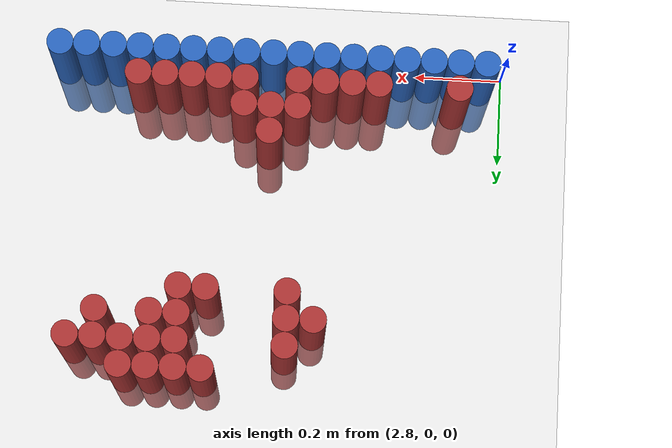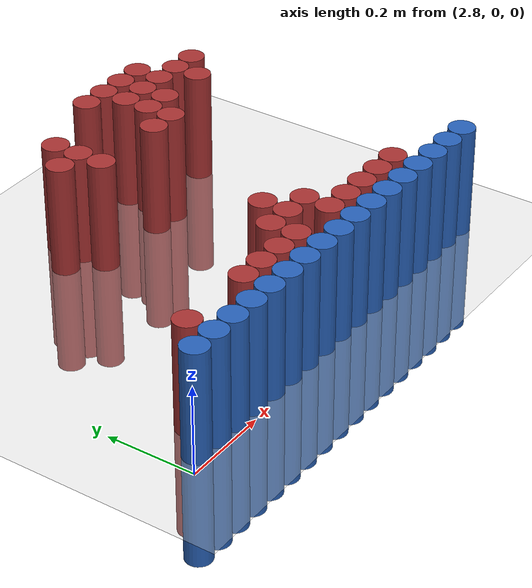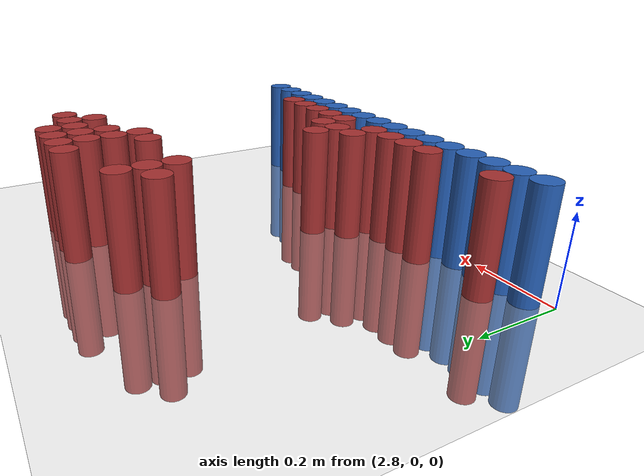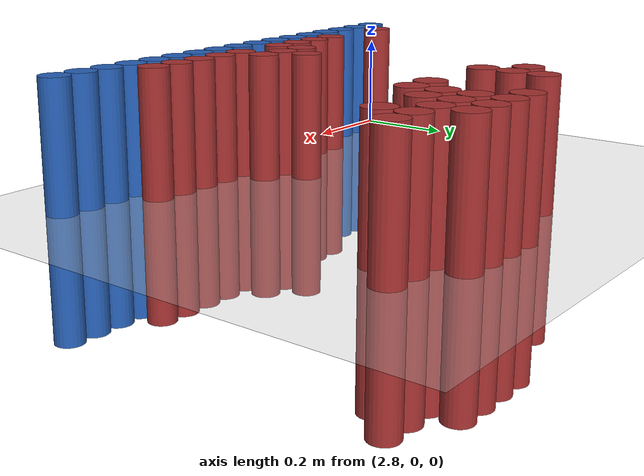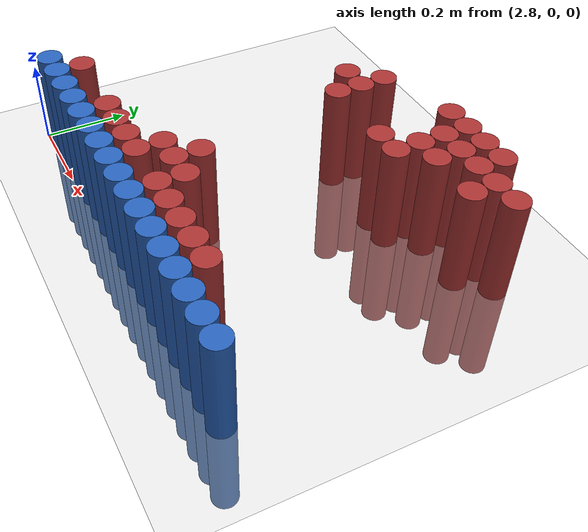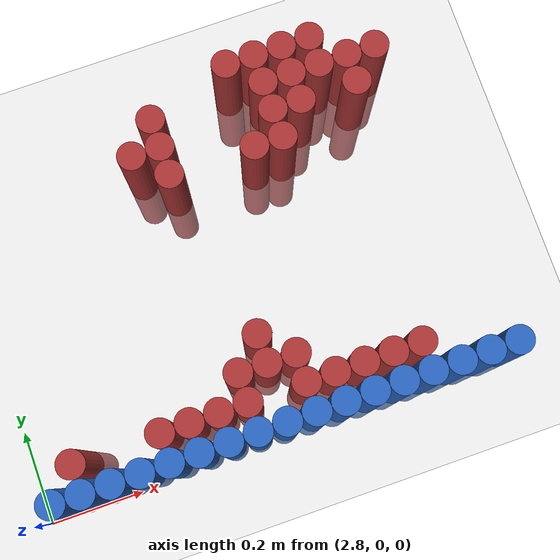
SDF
<sdf version="1.6">
 <world name="default">
  <model name="ground_plane">
   <static>1</static>
   <link name="link">
    <collision name="collision">
     <geometry><plane><normal>0 0 1</normal><size>100 100</size></plane></geometry>
     <surface><friction><ode><mu>100</mu><mu2>50</mu2></ode></friction></surface>
    </collision>
    <visual name="visual">
     <cast_shadows>0</cast_shadows>
     <geometry><plane><normal>0 0 1</normal><size>100 100</size></plane></geometry>
     <material>
      <script><uri>file://media/materials/scripts/gazebo.material</uri><name>Gazebo/Grey</name></script>
     </material>
    </visual>
   </link>
  </model>
  <model name="unit_cylinder_163">
   <static>1</static>
   <pose>3.450000 0.750000 0.000000 0.000000 0.000000 0.000000</pose>
   <link name="link">
    <inertial>
     <mass>1</mass>
     <inertia><ixx>0.145833</ixx><ixy>0</ixy><ixz>0</ixz><iyy>0.145833</iyy><iyz>0</iyz><izz>0.125</izz></inertia>
    </inertial>
    <collision name="collision">
     <geometry><cylinder><radius>0.030000</radius><length>0.5</length></cylinder></geometry>
    </collision>
    <visual name="visual">
     <geometry><cylinder><radius>0.030000</radius><length>0.5</length></cylinder></geometry>
     <material>
      <ambient>0.648000 0.192000 0.192000 1</ambient>
      <diffuse>0.648000 0.192000 0.192000 1</diffuse>
     </material>
     <material>
      <script><name>Gazebo/Grey</name><uri>file://media/materials/scripts/gazebo.material</uri></script>
     </material>
    </visual>
   </link>
  </model>
  <model name="unit_cylinder_164">
   <static>1</static>
   <pose>3.510000 0.750000 0.000000 0.000000 0.000000 0.000000</pose>
   <link name="link">
    <inertial>
     <mass>1</mass>
     <inertia><ixx>0.145833</ixx><ixy>0</ixy><ixz>0</ixz><iyy>0.145833</iyy><iyz>0</iyz><izz>0.125</izz></inertia>
    </inertial>
    <collision name="collision">
     <geometry><cylinder><radius>0.030000</radius><length>0.5</length></cylinder></geometry>
    </collision>
    <visual name="visual">
     <geometry><cylinder><radius>0.030000</radius><length>0.5</length></cylinder></geometry>
     <material>
      <ambient>0.648000 0.192000 0.192000 1</ambient>
      <diffuse>0.648000 0.192000 0.192000 1</diffuse>
     </material>
     <material>
      <script><name>Gazebo/Grey</name><uri>file://media/materials/scripts/gazebo.material</uri></script>
     </material>
    </visual>
   </link>
  </model>
  <model name="unit_cylinder_165">
   <static>1</static>
   <pose>3.570000 0.750000 0.000000 0.000000 0.000000 0.000000</pose>
   <link name="link">
    <inertial>
     <mass>1</mass>
     <inertia><ixx>0.145833</ixx><ixy>0</ixy><ixz>0</ixz><iyy>0.145833</iyy><iyz>0</iyz><izz>0.125</izz></inertia>
    </inertial>
    <collision name="collision">
     <geometry><cylinder><radius>0.030000</radius><length>0.5</length></cylinder></geometry>
    </collision>
    <visual name="visual">
     <geometry><cylinder><radius>0.030000</radius><length>0.5</length></cylinder></geometry>
     <material>
      <ambient>0.648000 0.192000 0.192000 1</ambient>
      <diffuse>0.648000 0.192000 0.192000 1</diffuse>
     </material>
     <material>
      <script><name>Gazebo/Grey</name><uri>file://media/materials/scripts/gazebo.material</uri></script>
     </material>
    </visual>
   </link>
  </model>
  <model name="unit_cylinder_166">
   <static>1</static>
   <pose>3.630000 0.750000 0.000000 0.000000 0.000000 0.000000</pose>
   <link name="link">
    <inertial>
     <mass>1</mass>
     <inertia><ixx>0.145833</ixx><ixy>0</ixy><ixz>0</ixz><iyy>0.145833</iyy><iyz>0</iyz><izz>0.125</izz></inertia>
    </inertial>
    <collision name="collision">
     <geometry><cylinder><radius>0.030000</radius><length>0.5</length></cylinder></geometry>
    </collision>
    <visual name="visual">
     <geometry><cylinder><radius>0.030000</radius><length>0.5</length></cylinder></geometry>
     <material>
      <ambient>0.648000 0.192000 0.192000 1</ambient>
      <diffuse>0.648000 0.192000 0.192000 1</diffuse>
     </material>
     <material>
      <script><name>Gazebo/Grey</name><uri>file://media/materials/scripts/gazebo.material</uri></script>
     </material>
    </visual>
   </link>
  </model>
  <model name="unit_cylinder_169">
   <static>1</static>
   <pose>3.270000 0.690000 0.000000 0.000000 0.000000 0.000000</pose>
   <link name="link">
    <inertial>
     <mass>1</mass>
     <inertia><ixx>0.145833</ixx><ixy>0</ixy><ixz>0</ixz><iyy>0.145833</iyy><iyz>0</iyz><izz>0.125</izz></inertia>
    </inertial>
    <collision name="collision">
     <geometry><cylinder><radius>0.030000</radius><length>0.5</length></cylinder></geometry>
    </collision>
    <visual name="visual">
     <geometry><cylinder><radius>0.030000</radius><length>0.5</length></cylinder></geometry>
     <material>
      <ambient>0.648000 0.192000 0.192000 1</ambient>
      <diffuse>0.648000 0.192000 0.192000 1</diffuse>
     </material>
     <material>
      <script><name>Gazebo/Grey</name><uri>file://media/materials/scripts/gazebo.material</uri></script>
     </material>
    </visual>
   </link>
  </model>
  <model name="unit_cylinder_170">
   <static>1</static>
   <pose>3.510000 0.690000 0.000000 0.000000 0.000000 0.000000</pose>
   <link name="link">
    <inertial>
     <mass>1</mass>
     <inertia><ixx>0.145833</ixx><ixy>0</ixy><ixz>0</ixz><iyy>0.145833</iyy><iyz>0</iyz><izz>0.125</izz></inertia>
    </inertial>
    <collision name="collision">
     <geometry><cylinder><radius>0.030000</radius><length>0.5</length></cylinder></geometry>
    </collision>
    <visual name="visual">
     <geometry><cylinder><radius>0.030000</radius><length>0.5</length></cylinder></geometry>
     <material>
      <ambient>0.648000 0.192000 0.192000 1</ambient>
      <diffuse>0.648000 0.192000 0.192000 1</diffuse>
     </material>
     <material>
      <script><name>Gazebo/Grey</name><uri>file://media/materials/scripts/gazebo.material</uri></script>
     </material>
    </visual>
   </link>
  </model>
  <model name="unit_cylinder_171">
   <static>1</static>
   <pose>3.570000 0.690000 0.000000 0.000000 0.000000 0.000000</pose>
   <link name="link">
    <inertial>
     <mass>1</mass>
     <inertia><ixx>0.145833</ixx><ixy>0</ixy><ixz>0</ixz><iyy>0.145833</iyy><iyz>0</iyz><izz>0.125</izz></inertia>
    </inertial>
    <collision name="collision">
     <geometry><cylinder><radius>0.030000</radius><length>0.5</length></cylinder></geometry>
    </collision>
    <visual name="visual">
     <geometry><cylinder><radius>0.030000</radius><length>0.5</length></cylinder></geometry>
     <material>
      <ambient>0.648000 0.192000 0.192000 1</ambient>
      <diffuse>0.648000 0.192000 0.192000 1</diffuse>
     </material>
     <material>
      <script><name>Gazebo/Grey</name><uri>file://media/materials/scripts/gazebo.material</uri></script>
     </material>
    </visual>
   </link>
  </model>
  <model name="unit_cylinder_172">
   <static>1</static>
   <pose>3.630000 0.690000 0.000000 0.000000 0.000000 0.000000</pose>
   <link name="link">
    <inertial>
     <mass>1</mass>
     <inertia><ixx>0.145833</ixx><ixy>0</ixy><ixz>0</ixz><iyy>0.145833</iyy><iyz>0</iyz><izz>0.125</izz></inertia>
    </inertial>
    <collision name="collision">
     <geometry><cylinder><radius>0.030000</radius><length>0.5</length></cylinder></geometry>
    </collision>
    <visual name="visual">
     <geometry><cylinder><radius>0.030000</radius><length>0.5</length></cylinder></geometry>
     <material>
      <ambient>0.648000 0.192000 0.192000 1</ambient>
      <diffuse>0.648000 0.192000 0.192000 1</diffuse>
     </material>
     <material>
      <script><name>Gazebo/Grey</name><uri>file://media/materials/scripts/gazebo.material</uri></script>
     </material>
    </visual>
   </link>
  </model>
  <model name="unit_cylinder_173">
   <static>1</static>
   <pose>3.690000 0.690000 0.000000 0.000000 0.000000 0.000000</pose>
   <link name="link">
    <inertial>
     <mass>1</mass>
     <inertia><ixx>0.145833</ixx><ixy>0</ixy><ixz>0</ixz><iyy>0.145833</iyy><iyz>0</iyz><izz>0.125</izz></inertia>
    </inertial>
    <collision name="collision">
     <geometry><cylinder><radius>0.030000</radius><length>0.5</length></cylinder></geometry>
    </collision>
    <visual name="visual">
     <geometry><cylinder><radius>0.030000</radius><length>0.5</length></cylinder></geometry>
     <material>
      <ambient>0.648000 0.192000 0.192000 1</ambient>
      <diffuse>0.648000 0.192000 0.192000 1</diffuse>
     </material>
     <material>
      <script><name>Gazebo/Grey</name><uri>file://media/materials/scripts/gazebo.material</uri></script>
     </material>
    </visual>
   </link>
  </model>
  <model name="unit_cylinder_174">
   <static>1</static>
   <pose>3.750000 0.690000 0.000000 0.000000 0.000000 0.000000</pose>
   <link name="link">
    <inertial>
     <mass>1</mass>
     <inertia><ixx>0.145833</ixx><ixy>0</ixy><ixz>0</ixz><iyy>0.145833</iyy><iyz>0</iyz><izz>0.125</izz></inertia>
    </inertial>
    <collision name="collision">
     <geometry><cylinder><radius>0.030000</radius><length>0.5</length></cylinder></geometry>
    </collision>
    <visual name="visual">
     <geometry><cylinder><radius>0.030000</radius><length>0.5</length></cylinder></geometry>
     <material>
      <ambient>0.648000 0.192000 0.192000 1</ambient>
      <diffuse>0.648000 0.192000 0.192000 1</diffuse>
     </material>
     <material>
      <script><name>Gazebo/Grey</name><uri>file://media/materials/scripts/gazebo.material</uri></script>
     </material>
    </visual>
   </link>
  </model>
  <model name="unit_cylinder_175">
   <static>1</static>
   <pose>3.210000 0.630000 0.000000 0.000000 0.000000 0.000000</pose>
   <link name="link">
    <inertial>
     <mass>1</mass>
     <inertia><ixx>0.145833</ixx><ixy>0</ixy><ixz>0</ixz><iyy>0.145833</iyy><iyz>0</iyz><izz>0.125</izz></inertia>
    </inertial>
    <collision name="collision">
     <geometry><cylinder><radius>0.030000</radius><length>0.5</length></cylinder></geometry>
    </collision>
    <visual name="visual">
     <geometry><cylinder><radius>0.030000</radius><length>0.5</length></cylinder></geometry>
     <material>
      <ambient>0.648000 0.192000 0.192000 1</ambient>
      <diffuse>0.648000 0.192000 0.192000 1</diffuse>
     </material>
     <material>
      <script><name>Gazebo/Grey</name><uri>file://media/materials/scripts/gazebo.material</uri></script>
     </material>
    </visual>
   </link>
  </model>
  <model name="unit_cylinder_176">
   <static>1</static>
   <pose>3.270000 0.630000 0.000000 0.000000 0.000000 0.000000</pose>
   <link name="link">
    <inertial>
     <mass>1</mass>
     <inertia><ixx>0.145833</ixx><ixy>0</ixy><ixz>0</ixz><iyy>0.145833</iyy><iyz>0</iyz><izz>0.125</izz></inertia>
    </inertial>
    <collision name="collision">
     <geometry><cylinder><radius>0.030000</radius><length>0.5</length></cylinder></geometry>
    </collision>
    <visual name="visual">
     <geometry><cylinder><radius>0.030000</radius><length>0.5</length></cylinder></geometry>
     <material>
      <ambient>0.648000 0.192000 0.192000 1</ambient>
      <diffuse>0.648000 0.192000 0.192000 1</diffuse>
     </material>
     <material>
      <script><name>Gazebo/Grey</name><uri>file://media/materials/scripts/gazebo.material</uri></script>
     </material>
    </visual>
   </link>
  </model>
  <model name="unit_cylinder_177">
   <static>1</static>
   <pose>3.510000 0.630000 0.000000 0.000000 0.000000 0.000000</pose>
   <link name="link">
    <inertial>
     <mass>1</mass>
     <inertia><ixx>0.145833</ixx><ixy>0</ixy><ixz>0</ixz><iyy>0.145833</iyy><iyz>0</iyz><izz>0.125</izz></inertia>
    </inertial>
    <collision name="collision">
     <geometry><cylinder><radius>0.030000</radius><length>0.5</length></cylinder></geometry>
    </collision>
    <visual name="visual">
     <geometry><cylinder><radius>0.030000</radius><length>0.5</length></cylinder></geometry>
     <material>
      <ambient>0.648000 0.192000 0.192000 1</ambient>
      <diffuse>0.648000 0.192000 0.192000 1</diffuse>
     </material>
     <material>
      <script><name>Gazebo/Grey</name><uri>file://media/materials/scripts/gazebo.material</uri></script>
     </material>
    </visual>
   </link>
  </model>
  <model name="unit_cylinder_178">
   <static>1</static>
   <pose>3.570000 0.630000 0.000000 0.000000 0.000000 0.000000</pose>
   <link name="link">
    <inertial>
     <mass>1</mass>
     <inertia><ixx>0.145833</ixx><ixy>0</ixy><ixz>0</ixz><iyy>0.145833</iyy><iyz>0</iyz><izz>0.125</izz></inertia>
    </inertial>
    <collision name="collision">
     <geometry><cylinder><radius>0.030000</radius><length>0.5</length></cylinder></geometry>
    </collision>
    <visual name="visual">
     <geometry><cylinder><radius>0.030000</radius><length>0.5</length></cylinder></geometry>
     <material>
      <ambient>0.648000 0.192000 0.192000 1</ambient>
      <diffuse>0.648000 0.192000 0.192000 1</diffuse>
     </material>
     <material>
      <script><name>Gazebo/Grey</name><uri>file://media/materials/scripts/gazebo.material</uri></script>
     </material>
    </visual>
   </link>
  </model>
  <model name="unit_cylinder_179">
   <static>1</static>
   <pose>3.690000 0.630000 0.000000 0.000000 0.000000 0.000000</pose>
   <link name="link">
    <inertial>
     <mass>1</mass>
     <inertia><ixx>0.145833</ixx><ixy>0</ixy><ixz>0</ixz><iyy>0.145833</iyy><iyz>0</iyz><izz>0.125</izz></inertia>
    </inertial>
    <collision name="collision">
     <geometry><cylinder><radius>0.030000</radius><length>0.5</length></cylinder></geometry>
    </collision>
    <visual name="visual">
     <geometry><cylinder><radius>0.030000</radius><length>0.5</length></cylinder></geometry>
     <material>
      <ambient>0.648000 0.192000 0.192000 1</ambient>
      <diffuse>0.648000 0.192000 0.192000 1</diffuse>
     </material>
     <material>
      <script><name>Gazebo/Grey</name><uri>file://media/materials/scripts/gazebo.material</uri></script>
     </material>
    </visual>
   </link>
  </model>
  <model name="unit_cylinder_180">
   <static>1</static>
   <pose>3.270000 0.570000 0.000000 0.000000 0.000000 0.000000</pose>
   <link name="link">
    <inertial>
     <mass>1</mass>
     <inertia><ixx>0.145833</ixx><ixy>0</ixy><ixz>0</ixz><iyy>0.145833</iyy><iyz>0</iyz><izz>0.125</izz></inertia>
    </inertial>
    <collision name="collision">
     <geometry><cylinder><radius>0.030000</radius><length>0.5</length></cylinder></geometry>
    </collision>
    <visual name="visual">
     <geometry><cylinder><radius>0.030000</radius><length>0.5</length></cylinder></geometry>
     <material>
      <ambient>0.648000 0.192000 0.192000 1</ambient>
      <diffuse>0.648000 0.192000 0.192000 1</diffuse>
     </material>
     <material>
      <script><name>Gazebo/Grey</name><uri>file://media/materials/scripts/gazebo.material</uri></script>
     </material>
    </visual>
   </link>
  </model>
  <model name="unit_cylinder_181">
   <static>1</static>
   <pose>3.450000 0.570000 0.000000 0.000000 0.000000 0.000000</pose>
   <link name="link">
    <inertial>
     <mass>1</mass>
     <inertia><ixx>0.145833</ixx><ixy>0</ixy><ixz>0</ixz><iyy>0.145833</iyy><iyz>0</iyz><izz>0.125</izz></inertia>
    </inertial>
    <collision name="collision">
     <geometry><cylinder><radius>0.030000</radius><length>0.5</length></cylinder></geometry>
    </collision>
    <visual name="visual">
     <geometry><cylinder><radius>0.030000</radius><length>0.5</length></cylinder></geometry>
     <material>
      <ambient>0.648000 0.192000 0.192000 1</ambient>
      <diffuse>0.648000 0.192000 0.192000 1</diffuse>
     </material>
     <material>
      <script><name>Gazebo/Grey</name><uri>file://media/materials/scripts/gazebo.material</uri></script>
     </material>
    </visual>
   </link>
  </model>
  <model name="unit_cylinder_182">
   <static>1</static>
   <pose>3.510000 0.570000 0.000000 0.000000 0.000000 0.000000</pose>
   <link name="link">
    <inertial>
     <mass>1</mass>
     <inertia><ixx>0.145833</ixx><ixy>0</ixy><ixz>0</ixz><iyy>0.145833</iyy><iyz>0</iyz><izz>0.125</izz></inertia>
    </inertial>
    <collision name="collision">
     <geometry><cylinder><radius>0.030000</radius><length>0.5</length></cylinder></geometry>
    </collision>
    <visual name="visual">
     <geometry><cylinder><radius>0.030000</radius><length>0.5</length></cylinder></geometry>
     <material>
      <ambient>0.648000 0.192000 0.192000 1</ambient>
      <diffuse>0.648000 0.192000 0.192000 1</diffuse>
     </material>
     <material>
      <script><name>Gazebo/Grey</name><uri>file://media/materials/scripts/gazebo.material</uri></script>
     </material>
    </visual>
   </link>
  </model>
  <model name="unit_cylinder_188">
   <static>1</static>
   <pose>3.330000 0.210000 0.000000 0.000000 0.000000 0.000000</pose>
   <link name="link">
    <inertial>
     <mass>1</mass>
     <inertia><ixx>0.145833</ixx><ixy>0</ixy><ixz>0</ixz><iyy>0.145833</iyy><iyz>0</iyz><izz>0.125</izz></inertia>
    </inertial>
    <collision name="collision">
     <geometry><cylinder><radius>0.030000</radius><length>0.5</length></cylinder></geometry>
    </collision>
    <visual name="visual">
     <geometry><cylinder><radius>0.030000</radius><length>0.5</length></cylinder></geometry>
     <material>
      <ambient>0.648000 0.192000 0.192000 1</ambient>
      <diffuse>0.648000 0.192000 0.192000 1</diffuse>
     </material>
     <material>
      <script><name>Gazebo/Grey</name><uri>file://media/materials/scripts/gazebo.material</uri></script>
     </material>
    </visual>
   </link>
  </model>
  <model name="unit_cylinder_193">
   <static>1</static>
   <pose>3.270000 0.150000 0.000000 0.000000 0.000000 0.000000</pose>
   <link name="link">
    <inertial>
     <mass>1</mass>
     <inertia><ixx>0.145833</ixx><ixy>0</ixy><ixz>0</ixz><iyy>0.145833</iyy><iyz>0</iyz><izz>0.125</izz></inertia>
    </inertial>
    <collision name="collision">
     <geometry><cylinder><radius>0.030000</radius><length>0.5</length></cylinder></geometry>
    </collision>
    <visual name="visual">
     <geometry><cylinder><radius>0.030000</radius><length>0.5</length></cylinder></geometry>
     <material>
      <ambient>0.648000 0.192000 0.192000 1</ambient>
      <diffuse>0.648000 0.192000 0.192000 1</diffuse>
     </material>
     <material>
      <script><name>Gazebo/Grey</name><uri>file://media/materials/scripts/gazebo.material</uri></script>
     </material>
    </visual>
   </link>
  </model>
  <model name="unit_cylinder_194">
   <static>1</static>
   <pose>3.330000 0.150000 0.000000 0.000000 0.000000 0.000000</pose>
   <link name="link">
    <inertial>
     <mass>1</mass>
     <inertia><ixx>0.145833</ixx><ixy>0</ixy><ixz>0</ixz><iyy>0.145833</iyy><iyz>0</iyz><izz>0.125</izz></inertia>
    </inertial>
    <collision name="collision">
     <geometry><cylinder><radius>0.030000</radius><length>0.5</length></cylinder></geometry>
    </collision>
    <visual name="visual">
     <geometry><cylinder><radius>0.030000</radius><length>0.5</length></cylinder></geometry>
     <material>
      <ambient>0.648000 0.192000 0.192000 1</ambient>
      <diffuse>0.648000 0.192000 0.192000 1</diffuse>
     </material>
     <material>
      <script><name>Gazebo/Grey</name><uri>file://media/materials/scripts/gazebo.material</uri></script>
     </material>
    </visual>
   </link>
  </model>
  <model name="unit_cylinder_195">
   <static>1</static>
   <pose>3.390000 0.150000 0.000000 0.000000 0.000000 0.000000</pose>
   <link name="link">
    <inertial>
     <mass>1</mass>
     <inertia><ixx>0.145833</ixx><ixy>0</ixy><ixz>0</ixz><iyy>0.145833</iyy><iyz>0</iyz><izz>0.125</izz></inertia>
    </inertial>
    <collision name="collision">
     <geometry><cylinder><radius>0.030000</radius><length>0.5</length></cylinder></geometry>
    </collision>
    <visual name="visual">
     <geometry><cylinder><radius>0.030000</radius><length>0.5</length></cylinder></geometry>
     <material>
      <ambient>0.648000 0.192000 0.192000 1</ambient>
      <diffuse>0.648000 0.192000 0.192000 1</diffuse>
     </material>
     <material>
      <script><name>Gazebo/Grey</name><uri>file://media/materials/scripts/gazebo.material</uri></script>
     </material>
    </visual>
   </link>
  </model>
  <model name="unit_cylinder_205">
   <static>1</static>
   <pose>2.910000 0.090000 0.000000 0.000000 0.000000 0.000000</pose>
   <link name="link">
    <inertial>
     <mass>1</mass>
     <inertia><ixx>0.145833</ixx><ixy>0</ixy><ixz>0</ixz><iyy>0.145833</iyy><iyz>0</iyz><izz>0.125</izz></inertia>
    </inertial>
    <collision name="collision">
     <geometry><cylinder><radius>0.030000</radius><length>0.5</length></cylinder></geometry>
    </collision>
    <visual name="visual">
     <geometry><cylinder><radius>0.030000</radius><length>0.5</length></cylinder></geometry>
     <material>
      <ambient>0.648000 0.192000 0.192000 1</ambient>
      <diffuse>0.648000 0.192000 0.192000 1</diffuse>
     </material>
     <material>
      <script><name>Gazebo/Grey</name><uri>file://media/materials/scripts/gazebo.material</uri></script>
     </material>
    </visual>
   </link>
  </model>
  <model name="unit_cylinder_206">
   <static>1</static>
   <pose>3.090000 0.090000 0.000000 0.000000 0.000000 0.000000</pose>
   <link name="link">
    <inertial>
     <mass>1</mass>
     <inertia><ixx>0.145833</ixx><ixy>0</ixy><ixz>0</ixz><iyy>0.145833</iyy><iyz>0</iyz><izz>0.125</izz></inertia>
    </inertial>
    <collision name="collision">
     <geometry><cylinder><radius>0.030000</radius><length>0.5</length></cylinder></geometry>
    </collision>
    <visual name="visual">
     <geometry><cylinder><radius>0.030000</radius><length>0.5</length></cylinder></geometry>
     <material>
      <ambient>0.648000 0.192000 0.192000 1</ambient>
      <diffuse>0.648000 0.192000 0.192000 1</diffuse>
     </material>
     <material>
      <script><name>Gazebo/Grey</name><uri>file://media/materials/scripts/gazebo.material</uri></script>
     </material>
    </visual>
   </link>
  </model>
  <model name="unit_cylinder_207">
   <static>1</static>
   <pose>3.150000 0.090000 0.000000 0.000000 0.000000 0.000000</pose>
   <link name="link">
    <inertial>
     <mass>1</mass>
     <inertia><ixx>0.145833</ixx><ixy>0</ixy><ixz>0</ixz><iyy>0.145833</iyy><iyz>0</iyz><izz>0.125</izz></inertia>
    </inertial>
    <collision name="collision">
     <geometry><cylinder><radius>0.030000</radius><length>0.5</length></cylinder></geometry>
    </collision>
    <visual name="visual">
     <geometry><cylinder><radius>0.030000</radius><length>0.5</length></cylinder></geometry>
     <material>
      <ambient>0.648000 0.192000 0.192000 1</ambient>
      <diffuse>0.648000 0.192000 0.192000 1</diffuse>
     </material>
     <material>
      <script><name>Gazebo/Grey</name><uri>file://media/materials/scripts/gazebo.material</uri></script>
     </material>
    </visual>
   </link>
  </model>
  <model name="unit_cylinder_208">
   <static>1</static>
   <pose>3.210000 0.090000 0.000000 0.000000 0.000000 0.000000</pose>
   <link name="link">
    <inertial>
     <mass>1</mass>
     <inertia><ixx>0.145833</ixx><ixy>0</ixy><ixz>0</ixz><iyy>0.145833</iyy><iyz>0</iyz><izz>0.125</izz></inertia>
    </inertial>
    <collision name="collision">
     <geometry><cylinder><radius>0.030000</radius><length>0.5</length></cylinder></geometry>
    </collision>
    <visual name="visual">
     <geometry><cylinder><radius>0.030000</radius><length>0.5</length></cylinder></geometry>
     <material>
      <ambient>0.648000 0.192000 0.192000 1</ambient>
      <diffuse>0.648000 0.192000 0.192000 1</diffuse>
     </material>
     <material>
      <script><name>Gazebo/Grey</name><uri>file://media/materials/scripts/gazebo.material</uri></script>
     </material>
    </visual>
   </link>
  </model>
  <model name="unit_cylinder_209">
   <static>1</static>
   <pose>3.270000 0.090000 0.000000 0.000000 0.000000 0.000000</pose>
   <link name="link">
    <inertial>
     <mass>1</mass>
     <inertia><ixx>0.145833</ixx><ixy>0</ixy><ixz>0</ixz><iyy>0.145833</iyy><iyz>0</iyz><izz>0.125</izz></inertia>
    </inertial>
    <collision name="collision">
     <geometry><cylinder><radius>0.030000</radius><length>0.5</length></cylinder></geometry>
    </collision>
    <visual name="visual">
     <geometry><cylinder><radius>0.030000</radius><length>0.5</length></cylinder></geometry>
     <material>
      <ambient>0.648000 0.192000 0.192000 1</ambient>
      <diffuse>0.648000 0.192000 0.192000 1</diffuse>
     </material>
     <material>
      <script><name>Gazebo/Grey</name><uri>file://media/materials/scripts/gazebo.material</uri></script>
     </material>
    </visual>
   </link>
  </model>
  <model name="unit_cylinder_210">
   <static>1</static>
   <pose>3.390000 0.090000 0.000000 0.000000 0.000000 0.000000</pose>
   <link name="link">
    <inertial>
     <mass>1</mass>
     <inertia><ixx>0.145833</ixx><ixy>0</ixy><ixz>0</ixz><iyy>0.145833</iyy><iyz>0</iyz><izz>0.125</izz></inertia>
    </inertial>
    <collision name="collision">
     <geometry><cylinder><radius>0.030000</radius><length>0.5</length></cylinder></geometry>
    </collision>
    <visual name="visual">
     <geometry><cylinder><radius>0.030000</radius><length>0.5</length></cylinder></geometry>
     <material>
      <ambient>0.648000 0.192000 0.192000 1</ambient>
      <diffuse>0.648000 0.192000 0.192000 1</diffuse>
     </material>
     <material>
      <script><name>Gazebo/Grey</name><uri>file://media/materials/scripts/gazebo.material</uri></script>
     </material>
    </visual>
   </link>
  </model>
  <model name="unit_cylinder_211">
   <static>1</static>
   <pose>3.450000 0.090000 0.000000 0.000000 0.000000 0.000000</pose>
   <link name="link">
    <inertial>
     <mass>1</mass>
     <inertia><ixx>0.145833</ixx><ixy>0</ixy><ixz>0</ixz><iyy>0.145833</iyy><iyz>0</iyz><izz>0.125</izz></inertia>
    </inertial>
    <collision name="collision">
     <geometry><cylinder><radius>0.030000</radius><length>0.5</length></cylinder></geometry>
    </collision>
    <visual name="visual">
     <geometry><cylinder><radius>0.030000</radius><length>0.5</length></cylinder></geometry>
     <material>
      <ambient>0.648000 0.192000 0.192000 1</ambient>
      <diffuse>0.648000 0.192000 0.192000 1</diffuse>
     </material>
     <material>
      <script><name>Gazebo/Grey</name><uri>file://media/materials/scripts/gazebo.material</uri></script>
     </material>
    </visual>
   </link>
  </model>
  <model name="unit_cylinder_212">
   <static>1</static>
   <pose>3.510000 0.090000 0.000000 0.000000 0.000000 0.000000</pose>
   <link name="link">
    <inertial>
     <mass>1</mass>
     <inertia><ixx>0.145833</ixx><ixy>0</ixy><ixz>0</ixz><iyy>0.145833</iyy><iyz>0</iyz><izz>0.125</izz></inertia>
    </inertial>
    <collision name="collision">
     <geometry><cylinder><radius>0.030000</radius><length>0.5</length></cylinder></geometry>
    </collision>
    <visual name="visual">
     <geometry><cylinder><radius>0.030000</radius><length>0.5</length></cylinder></geometry>
     <material>
      <ambient>0.648000 0.192000 0.192000 1</ambient>
      <diffuse>0.648000 0.192000 0.192000 1</diffuse>
     </material>
     <material>
      <script><name>Gazebo/Grey</name><uri>file://media/materials/scripts/gazebo.material</uri></script>
     </material>
    </visual>
   </link>
  </model>
  <model name="unit_cylinder_213">
   <static>1</static>
   <pose>3.570000 0.090000 0.000000 0.000000 0.000000 0.000000</pose>
   <link name="link">
    <inertial>
     <mass>1</mass>
     <inertia><ixx>0.145833</ixx><ixy>0</ixy><ixz>0</ixz><iyy>0.145833</iyy><iyz>0</iyz><izz>0.125</izz></inertia>
    </inertial>
    <collision name="collision">
     <geometry><cylinder><radius>0.030000</radius><length>0.5</length></cylinder></geometry>
    </collision>
    <visual name="visual">
     <geometry><cylinder><radius>0.030000</radius><length>0.5</length></cylinder></geometry>
     <material>
      <ambient>0.648000 0.192000 0.192000 1</ambient>
      <diffuse>0.648000 0.192000 0.192000 1</diffuse>
     </material>
     <material>
      <script><name>Gazebo/Grey</name><uri>file://media/materials/scripts/gazebo.material</uri></script>
     </material>
    </visual>
   </link>
  </model>
  <model name="unit_cylinder_214">
   <static>1</static>
   <pose>3.630000 0.090000 0.000000 0.000000 0.000000 0.000000</pose>
   <link name="link">
    <inertial>
     <mass>1</mass>
     <inertia><ixx>0.145833</ixx><ixy>0</ixy><ixz>0</ixz><iyy>0.145833</iyy><iyz>0</iyz><izz>0.125</izz></inertia>
    </inertial>
    <collision name="collision">
     <geometry><cylinder><radius>0.030000</radius><length>0.5</length></cylinder></geometry>
    </collision>
    <visual name="visual">
     <geometry><cylinder><radius>0.030000</radius><length>0.5</length></cylinder></geometry>
     <material>
      <ambient>0.648000 0.192000 0.192000 1</ambient>
      <diffuse>0.648000 0.192000 0.192000 1</diffuse>
     </material>
     <material>
      <script><name>Gazebo/Grey</name><uri>file://media/materials/scripts/gazebo.material</uri></script>
     </material>
    </visual>
   </link>
  </model>
  <model name="unit_cylinder_228">
   <static>1</static>
   <pose>2.850000 0.030000 0.000000 0.000000 0.000000 0.000000</pose>
   <link name="link">
    <inertial>
     <mass>1</mass>
     <inertia><ixx>0.145833</ixx><ixy>0</ixy><ixz>0</ixz><iyy>0.145833</iyy><iyz>0</iyz><izz>0.125</izz></inertia>
    </inertial>
    <collision name="collision">
     <geometry><cylinder><radius>0.030000</radius><length>0.5</length></cylinder></geometry>
    </collision>
    <visual name="visual">
     <geometry><cylinder><radius>0.030000</radius><length>0.5</length></cylinder></geometry>
     <material>
      <ambient>0.152000 0.379000 0.720000 1</ambient>
      <diffuse>0.152000 0.379000 0.720000 1</diffuse>
     </material>
     <material>
      <script><name>Gazebo/Grey</name><uri>file://media/materials/scripts/gazebo.material</uri></script>
     </material>
    </visual>
   </link>
  </model>
  <model name="unit_cylinder_229">
   <static>1</static>
   <pose>2.910000 0.030000 0.000000 0.000000 0.000000 0.000000</pose>
   <link name="link">
    <inertial>
     <mass>1</mass>
     <inertia><ixx>0.145833</ixx><ixy>0</ixy><ixz>0</ixz><iyy>0.145833</iyy><iyz>0</iyz><izz>0.125</izz></inertia>
    </inertial>
    <collision name="collision">
     <geometry><cylinder><radius>0.030000</radius><length>0.5</length></cylinder></geometry>
    </collision>
    <visual name="visual">
     <geometry><cylinder><radius>0.030000</radius><length>0.5</length></cylinder></geometry>
     <material>
      <ambient>0.152000 0.379000 0.720000 1</ambient>
      <diffuse>0.152000 0.379000 0.720000 1</diffuse>
     </material>
     <material>
      <script><name>Gazebo/Grey</name><uri>file://media/materials/scripts/gazebo.material</uri></script>
     </material>
    </visual>
   </link>
  </model>
  <model name="unit_cylinder_230">
   <static>1</static>
   <pose>2.970000 0.030000 0.000000 0.000000 0.000000 0.000000</pose>
   <link name="link">
    <inertial>
     <mass>1</mass>
     <inertia><ixx>0.145833</ixx><ixy>0</ixy><ixz>0</ixz><iyy>0.145833</iyy><iyz>0</iyz><izz>0.125</izz></inertia>
    </inertial>
    <collision name="collision">
     <geometry><cylinder><radius>0.030000</radius><length>0.5</length></cylinder></geometry>
    </collision>
    <visual name="visual">
     <geometry><cylinder><radius>0.030000</radius><length>0.5</length></cylinder></geometry>
     <material>
      <ambient>0.152000 0.379000 0.720000 1</ambient>
      <diffuse>0.152000 0.379000 0.720000 1</diffuse>
     </material>
     <material>
      <script><name>Gazebo/Grey</name><uri>file://media/materials/scripts/gazebo.material</uri></script>
     </material>
    </visual>
   </link>
  </model>
  <model name="unit_cylinder_231">
   <static>1</static>
   <pose>3.030000 0.030000 0.000000 0.000000 0.000000 0.000000</pose>
   <link name="link">
    <inertial>
     <mass>1</mass>
     <inertia><ixx>0.145833</ixx><ixy>0</ixy><ixz>0</ixz><iyy>0.145833</iyy><iyz>0</iyz><izz>0.125</izz></inertia>
    </inertial>
    <collision name="collision">
     <geometry><cylinder><radius>0.030000</radius><length>0.5</length></cylinder></geometry>
    </collision>
    <visual name="visual">
     <geometry><cylinder><radius>0.030000</radius><length>0.5</length></cylinder></geometry>
     <material>
      <ambient>0.152000 0.379000 0.720000 1</ambient>
      <diffuse>0.152000 0.379000 0.720000 1</diffuse>
     </material>
     <material>
      <script><name>Gazebo/Grey</name><uri>file://media/materials/scripts/gazebo.material</uri></script>
     </material>
    </visual>
   </link>
  </model>
  <model name="unit_cylinder_232">
   <static>1</static>
   <pose>3.090000 0.030000 0.000000 0.000000 0.000000 0.000000</pose>
   <link name="link">
    <inertial>
     <mass>1</mass>
     <inertia><ixx>0.145833</ixx><ixy>0</ixy><ixz>0</ixz><iyy>0.145833</iyy><iyz>0</iyz><izz>0.125</izz></inertia>
    </inertial>
    <collision name="collision">
     <geometry><cylinder><radius>0.030000</radius><length>0.5</length></cylinder></geometry>
    </collision>
    <visual name="visual">
     <geometry><cylinder><radius>0.030000</radius><length>0.5</length></cylinder></geometry>
     <material>
      <ambient>0.152000 0.379000 0.720000 1</ambient>
      <diffuse>0.152000 0.379000 0.720000 1</diffuse>
     </material>
     <material>
      <script><name>Gazebo/Grey</name><uri>file://media/materials/scripts/gazebo.material</uri></script>
     </material>
    </visual>
   </link>
  </model>
  <model name="unit_cylinder_233">
   <static>1</static>
   <pose>3.150000 0.030000 0.000000 0.000000 0.000000 0.000000</pose>
   <link name="link">
    <inertial>
     <mass>1</mass>
     <inertia><ixx>0.145833</ixx><ixy>0</ixy><ixz>0</ixz><iyy>0.145833</iyy><iyz>0</iyz><izz>0.125</izz></inertia>
    </inertial>
    <collision name="collision">
     <geometry><cylinder><radius>0.030000</radius><length>0.5</length></cylinder></geometry>
    </collision>
    <visual name="visual">
     <geometry><cylinder><radius>0.030000</radius><length>0.5</length></cylinder></geometry>
     <material>
      <ambient>0.152000 0.379000 0.720000 1</ambient>
      <diffuse>0.152000 0.379000 0.720000 1</diffuse>
     </material>
     <material>
      <script><name>Gazebo/Grey</name><uri>file://media/materials/scripts/gazebo.material</uri></script>
     </material>
    </visual>
   </link>
  </model>
  <model name="unit_cylinder_234">
   <static>1</static>
   <pose>3.210000 0.030000 0.000000 0.000000 0.000000 0.000000</pose>
   <link name="link">
    <inertial>
     <mass>1</mass>
     <inertia><ixx>0.145833</ixx><ixy>0</ixy><ixz>0</ixz><iyy>0.145833</iyy><iyz>0</iyz><izz>0.125</izz></inertia>
    </inertial>
    <collision name="collision">
     <geometry><cylinder><radius>0.030000</radius><length>0.5</length></cylinder></geometry>
    </collision>
    <visual name="visual">
     <geometry><cylinder><radius>0.030000</radius><length>0.5</length></cylinder></geometry>
     <material>
      <ambient>0.152000 0.379000 0.720000 1</ambient>
      <diffuse>0.152000 0.379000 0.720000 1</diffuse>
     </material>
     <material>
      <script><name>Gazebo/Grey</name><uri>file://media/materials/scripts/gazebo.material</uri></script>
     </material>
    </visual>
   </link>
  </model>
  <model name="unit_cylinder_235">
   <static>1</static>
   <pose>3.270000 0.030000 0.000000 0.000000 0.000000 0.000000</pose>
   <link name="link">
    <inertial>
     <mass>1</mass>
     <inertia><ixx>0.145833</ixx><ixy>0</ixy><ixz>0</ixz><iyy>0.145833</iyy><iyz>0</iyz><izz>0.125</izz></inertia>
    </inertial>
    <collision name="collision">
     <geometry><cylinder><radius>0.030000</radius><length>0.5</length></cylinder></geometry>
    </collision>
    <visual name="visual">
     <geometry><cylinder><radius>0.030000</radius><length>0.5</length></cylinder></geometry>
     <material>
      <ambient>0.152000 0.379000 0.720000 1</ambient>
      <diffuse>0.152000 0.379000 0.720000 1</diffuse>
     </material>
     <material>
      <script><name>Gazebo/Grey</name><uri>file://media/materials/scripts/gazebo.material</uri></script>
     </material>
    </visual>
   </link>
  </model>
  <model name="unit_cylinder_236">
   <static>1</static>
   <pose>3.330000 0.030000 0.000000 0.000000 0.000000 0.000000</pose>
   <link name="link">
    <inertial>
     <mass>1</mass>
     <inertia><ixx>0.145833</ixx><ixy>0</ixy><ixz>0</ixz><iyy>0.145833</iyy><iyz>0</iyz><izz>0.125</izz></inertia>
    </inertial>
    <collision name="collision">
     <geometry><cylinder><radius>0.030000</radius><length>0.5</length></cylinder></geometry>
    </collision>
    <visual name="visual">
     <geometry><cylinder><radius>0.030000</radius><length>0.5</length></cylinder></geometry>
     <material>
      <ambient>0.152000 0.379000 0.720000 1</ambient>
      <diffuse>0.152000 0.379000 0.720000 1</diffuse>
     </material>
     <material>
      <script><name>Gazebo/Grey</name><uri>file://media/materials/scripts/gazebo.material</uri></script>
     </material>
    </visual>
   </link>
  </model>
  <model name="unit_cylinder_237">
   <static>1</static>
   <pose>3.390000 0.030000 0.000000 0.000000 0.000000 0.000000</pose>
   <link name="link">
    <inertial>
     <mass>1</mass>
     <inertia><ixx>0.145833</ixx><ixy>0</ixy><ixz>0</ixz><iyy>0.145833</iyy><iyz>0</iyz><izz>0.125</izz></inertia>
    </inertial>
    <collision name="collision">
     <geometry><cylinder><radius>0.030000</radius><length>0.5</length></cylinder></geometry>
    </collision>
    <visual name="visual">
     <geometry><cylinder><radius>0.030000</radius><length>0.5</length></cylinder></geometry>
     <material>
      <ambient>0.152000 0.379000 0.720000 1</ambient>
      <diffuse>0.152000 0.379000 0.720000 1</diffuse>
     </material>
     <material>
      <script><name>Gazebo/Grey</name><uri>file://media/materials/scripts/gazebo.material</uri></script>
     </material>
    </visual>
   </link>
  </model>
  <model name="unit_cylinder_238">
   <static>1</static>
   <pose>3.450000 0.030000 0.000000 0.000000 0.000000 0.000000</pose>
   <link name="link">
    <inertial>
     <mass>1</mass>
     <inertia><ixx>0.145833</ixx><ixy>0</ixy><ixz>0</ixz><iyy>0.145833</iyy><iyz>0</iyz><izz>0.125</izz></inertia>
    </inertial>
    <collision name="collision">
     <geometry><cylinder><radius>0.030000</radius><length>0.5</length></cylinder></geometry>
    </collision>
    <visual name="visual">
     <geometry><cylinder><radius>0.030000</radius><length>0.5</length></cylinder></geometry>
     <material>
      <ambient>0.152000 0.379000 0.720000 1</ambient>
      <diffuse>0.152000 0.379000 0.720000 1</diffuse>
     </material>
     <material>
      <script><name>Gazebo/Grey</name><uri>file://media/materials/scripts/gazebo.material</uri></script>
     </material>
    </visual>
   </link>
  </model>
  <model name="unit_cylinder_239">
   <static>1</static>
   <pose>3.510000 0.030000 0.000000 0.000000 0.000000 0.000000</pose>
   <link name="link">
    <inertial>
     <mass>1</mass>
     <inertia><ixx>0.145833</ixx><ixy>0</ixy><ixz>0</ixz><iyy>0.145833</iyy><iyz>0</iyz><izz>0.125</izz></inertia>
    </inertial>
    <collision name="collision">
     <geometry><cylinder><radius>0.030000</radius><length>0.5</length></cylinder></geometry>
    </collision>
    <visual name="visual">
     <geometry><cylinder><radius>0.030000</radius><length>0.5</length></cylinder></geometry>
     <material>
      <ambient>0.152000 0.379000 0.720000 1</ambient>
      <diffuse>0.152000 0.379000 0.720000 1</diffuse>
     </material>
     <material>
      <script><name>Gazebo/Grey</name><uri>file://media/materials/scripts/gazebo.material</uri></script>
     </material>
    </visual>
   </link>
  </model>
  <model name="unit_cylinder_240">
   <static>1</static>
   <pose>3.570000 0.030000 0.000000 0.000000 0.000000 0.000000</pose>
   <link name="link">
    <inertial>
     <mass>1</mass>
     <inertia><ixx>0.145833</ixx><ixy>0</ixy><ixz>0</ixz><iyy>0.145833</iyy><iyz>0</iyz><izz>0.125</izz></inertia>
    </inertial>
    <collision name="collision">
     <geometry><cylinder><radius>0.030000</radius><length>0.5</length></cylinder></geometry>
    </collision>
    <visual name="visual">
     <geometry><cylinder><radius>0.030000</radius><length>0.5</length></cylinder></geometry>
     <material>
      <ambient>0.152000 0.379000 0.720000 1</ambient>
      <diffuse>0.152000 0.379000 0.720000 1</diffuse>
     </material>
     <material>
      <script><name>Gazebo/Grey</name><uri>file://media/materials/scripts/gazebo.material</uri></script>
     </material>
    </visual>
   </link>
  </model>
  <model name="unit_cylinder_241">
   <static>1</static>
   <pose>3.630000 0.030000 0.000000 0.000000 0.000000 0.000000</pose>
   <link name="link">
    <inertial>
     <mass>1</mass>
     <inertia><ixx>0.145833</ixx><ixy>0</ixy><ixz>0</ixz><iyy>0.145833</iyy><iyz>0</iyz><izz>0.125</izz></inertia>
    </inertial>
    <collision name="collision">
     <geometry><cylinder><radius>0.030000</radius><length>0.5</length></cylinder></geometry>
    </collision>
    <visual name="visual">
     <geometry><cylinder><radius>0.030000</radius><length>0.5</length></cylinder></geometry>
     <material>
      <ambient>0.152000 0.379000 0.720000 1</ambient>
      <diffuse>0.152000 0.379000 0.720000 1</diffuse>
     </material>
     <material>
      <script><name>Gazebo/Grey</name><uri>file://media/materials/scripts/gazebo.material</uri></script>
     </material>
    </visual>
   </link>
  </model>
  <model name="unit_cylinder_242">
   <static>1</static>
   <pose>3.690000 0.030000 0.000000 0.000000 0.000000 0.000000</pose>
   <link name="link">
    <inertial>
     <mass>1</mass>
     <inertia><ixx>0.145833</ixx><ixy>0</ixy><ixz>0</ixz><iyy>0.145833</iyy><iyz>0</iyz><izz>0.125</izz></inertia>
    </inertial>
    <collision name="collision">
     <geometry><cylinder><radius>0.030000</radius><length>0.5</length></cylinder></geometry>
    </collision>
    <visual name="visual">
     <geometry><cylinder><radius>0.030000</radius><length>0.5</length></cylinder></geometry>
     <material>
      <ambient>0.152000 0.379000 0.720000 1</ambient>
      <diffuse>0.152000 0.379000 0.720000 1</diffuse>
     </material>
     <material>
      <script><name>Gazebo/Grey</name><uri>file://media/materials/scripts/gazebo.material</uri></script>
     </material>
    </visual>
   </link>
  </model>
  <model name="unit_cylinder_243">
   <static>1</static>
   <pose>3.750000 0.030000 0.000000 0.000000 0.000000 0.000000</pose>
   <link name="link">
    <inertial>
     <mass>1</mass>
     <inertia><ixx>0.145833</ixx><ixy>0</ixy><ixz>0</ixz><iyy>0.145833</iyy><iyz>0</iyz><izz>0.125</izz></inertia>
    </inertial>
    <collision name="collision">
     <geometry><cylinder><radius>0.030000</radius><length>0.5</length></cylinder></geometry>
    </collision>
    <visual name="visual">
     <geometry><cylinder><radius>0.030000</radius><length>0.5</length></cylinder></geometry>
     <material>
      <ambient>0.152000 0.379000 0.720000 1</ambient>
      <diffuse>0.152000 0.379000 0.720000 1</diffuse>
     </material>
     <material>
      <script><name>Gazebo/Grey</name><uri>file://media/materials/scripts/gazebo.material</uri></script>
     </material>
    </visual>
   </link>
  </model>
  <model name="unit_cylinder_244">
   <static>1</static>
   <pose>3.810000 0.030000 0.000000 0.000000 0.000000 0.000000</pose>
   <link name="link">
    <inertial>
     <mass>1</mass>
     <inertia><ixx>0.145833</ixx><ixy>0</ixy><ixz>0</ixz><iyy>0.145833</iyy><iyz>0</iyz><izz>0.125</izz></inertia>
    </inertial>
    <collision name="collision">
     <geometry><cylinder><radius>0.030000</radius><length>0.5</length></cylinder></geometry>
    </collision>
    <visual name="visual">
     <geometry><cylinder><radius>0.030000</radius><length>0.5</length></cylinder></geometry>
     <material>
      <ambient>0.152000 0.379000 0.720000 1</ambient>
      <diffuse>0.152000 0.379000 0.720000 1</diffuse>
     </material>
     <material>
      <script><name>Gazebo/Grey</name><uri>file://media/materials/scripts/gazebo.material</uri></script>
     </material>
    </visual>
   </link>
  </model>
 </world>
</sdf>
